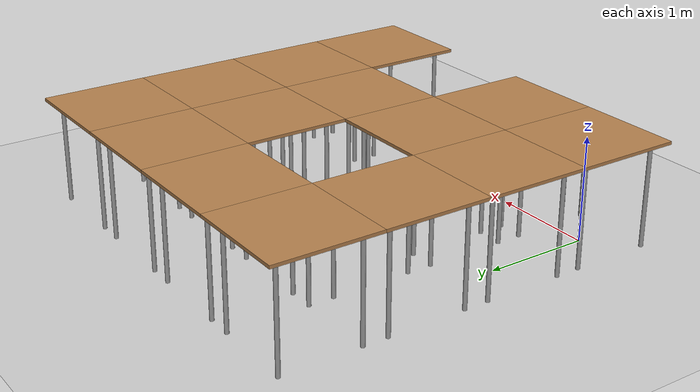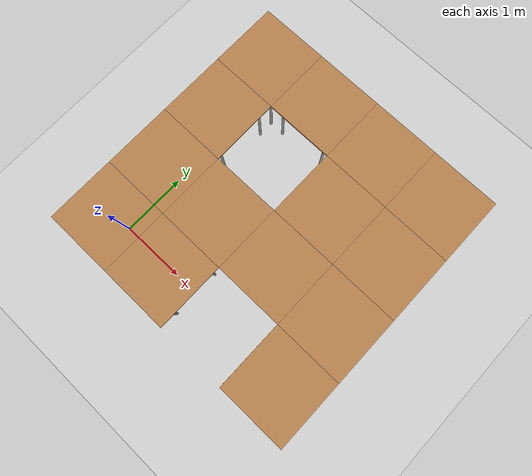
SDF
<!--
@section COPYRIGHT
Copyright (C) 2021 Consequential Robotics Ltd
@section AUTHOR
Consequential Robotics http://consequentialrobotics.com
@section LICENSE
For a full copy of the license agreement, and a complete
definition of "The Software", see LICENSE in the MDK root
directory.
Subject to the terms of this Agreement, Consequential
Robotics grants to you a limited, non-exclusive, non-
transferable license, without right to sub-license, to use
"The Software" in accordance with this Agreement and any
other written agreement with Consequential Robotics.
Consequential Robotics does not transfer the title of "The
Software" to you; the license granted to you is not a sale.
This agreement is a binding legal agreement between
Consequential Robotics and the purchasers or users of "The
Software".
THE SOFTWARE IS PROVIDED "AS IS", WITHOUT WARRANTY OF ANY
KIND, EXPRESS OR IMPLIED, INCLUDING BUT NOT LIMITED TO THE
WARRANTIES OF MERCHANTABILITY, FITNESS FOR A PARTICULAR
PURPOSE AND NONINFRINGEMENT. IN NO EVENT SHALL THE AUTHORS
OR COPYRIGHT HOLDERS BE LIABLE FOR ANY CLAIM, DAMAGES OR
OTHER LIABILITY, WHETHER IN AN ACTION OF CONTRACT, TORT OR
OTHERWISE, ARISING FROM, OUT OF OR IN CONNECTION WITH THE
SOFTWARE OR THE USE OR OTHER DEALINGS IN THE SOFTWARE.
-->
<sdf version="1.5">
 <world name="default">
  <physics name="default_physics" default="0" type="ode">
   <max_step_size>0.001</max_step_size>
   <real_time_factor>1</real_time_factor>
   <real_time_update_rate>1000</real_time_update_rate>
  </physics>
  <scene><ambient>0.4 0.4 0.4 1</ambient><background>0.7 0.7 0.7 1</background><shadows>0</shadows></scene>
  <light name="sun" type="directional">
   <cast_shadows>0</cast_shadows>
   <pose>0 0 10 0 -0 0</pose>
   <diffuse>0.8 0.8 0.8 1</diffuse>
   <specular>0.1 0.1 0.1 1</specular>
   <attenuation>
    <range>1000</range>
    <constant>0.9</constant>
    <linear>0.01</linear>
    <quadratic>0.001</quadratic>
   </attenuation>
   <direction>-0.5 0.5 -1</direction>
  </light>
  <include><uri>model://ground_plane</uri></include>
  <include><name>tile-1</name><uri>model://wumpus_tile</uri></include>
  <include><name>tile-2</name><uri>model://wumpus_tile</uri><pose>1 0 0 0 0 0</pose></include>
  <include><name>tile-4</name><uri>model://wumpus_tile</uri><pose>3 0 0 0 0 0</pose></include>
  <include><name>tile-5</name><uri>model://wumpus_tile</uri><pose>0 1 0 0 0 0</pose></include>
  <include><name>tile-6</name><uri>model://wumpus_tile</uri><pose>1 1 0 0 0 0</pose></include>
  <include><name>tile-7</name><uri>model://wumpus_tile</uri><pose>2 1 0 0 0 0</pose></include>
  <include><name>tile-8</name><uri>model://wumpus_tile</uri><pose>3 1 0 0 0 0</pose></include>
  <include><name>tile-9</name><uri>model://wumpus_tile</uri><pose>0 2 0 0 0 0</pose></include>
  <include><name>tile-11</name><uri>model://wumpus_tile</uri><pose>2 2 0 0 0 0</pose></include>
  <include><name>tile-12</name><uri>model://wumpus_tile</uri><pose>3 2 0 0 0 0</pose></include>
  <include><name>tile-13</name><uri>model://wumpus_tile</uri><pose>0 3 0 0 0 0</pose></include>
  <include><name>tile-14</name><uri>model://wumpus_tile</uri><pose>1 3 0 0 0 0</pose></include>
  <include><name>tile-15</name><uri>model://wumpus_tile</uri><pose>2 3 0 0 0 0</pose></include>
  <include><name>tile-16</name><uri>model://wumpus_tile</uri><pose>3 3 0 0 0 0</pose></include>
  <light name="spot-light-0" type="spot">
   <pose>2.30789 0.093 1.55469 0 0.641896 0</pose>
   <diffuse>0.5 0.5 0.5 1</diffuse>
   <specular>0.1 0.1 0.1 1</specular>
   <direction>0 0 -1</direction>
   <attenuation>
    <range>20</range>
    <constant>0.5</constant>
    <linear>0.01</linear>
    <quadratic>0.001</quadratic>
   </attenuation>
   <spot><inner_angle>0.6</inner_angle><outer_angle>0.8</outer_angle><falloff>1.0</falloff></spot>
   <cast_shadows>0</cast_shadows>
  </light>
  <gravity>0 0 -9.8</gravity>
  <magnetic_field>6e-06 2.3e-05 -4.2e-05</magnetic_field>
  <atmosphere type="adiabatic"/>
  <spherical_coordinates>
   <surface_model>EARTH_WGS84</surface_model>
   <latitude_deg>0</latitude_deg>
   <longitude_deg>0</longitude_deg>
   <elevation>0</elevation>
   <heading_deg>0</heading_deg>
  </spherical_coordinates>
 </world>
</sdf>

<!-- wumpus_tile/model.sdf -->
<sdf version="1.5">
  <model name="wumpus_tile">
    <static>true</static>
    <link name="link">
      <collision name="surface">
        <pose>0 0 1.0 0 0 0</pose>
        <geometry>
          <box>
            <size>1.0 1.0 0.03</size>
          </box>
        </geometry>
        <surface>
          <friction>
            <ode>
              <mu>0.6</mu>
              <mu2>0.6</mu2>
            </ode>
          </friction>
        </surface>
      </collision>
      <visual name="visual1">
        <pose>0 0 1.0 0 0 0</pose>
        <geometry>
          <box>
            <size>1.0 1.0 0.03</size>
          </box>
        </geometry>
        <material>
          <script>
            <uri>file://media/materials/scripts/gazebo.material</uri>
            <name>Gazebo/Wood</name>
          </script>
        </material>
      </visual>
      <collision name="front_left_leg">
        <pose>0.38 0.38 0.5 0 0 0</pose>
        <geometry>
          <cylinder>
            <radius>0.02</radius>
            <length>1.0</length>
          </cylinder>
        </geometry>
      </collision>
      <visual name="front_left_leg">
        <pose>0.38 0.38 0.5 0 0 0</pose>
        <geometry>
          <cylinder>
            <radius>0.02</radius>
            <length>1.0</length>
          </cylinder>
        </geometry>
        <material>
          <script>
            <uri>file://media/materials/scripts/gazebo.material</uri>
            <name>Gazebo/Grey</name>
          </script>
        </material>
      </visual>
      <collision name="front_right_leg">
        <pose>0.38 -0.38 0.5 0 0 0</pose>
        <geometry>
          <cylinder>
            <radius>0.02</radius>
            <length>1.0</length>
          </cylinder>
        </geometry>
      </collision>
      <visual name="front_right_leg">
        <pose>0.38 -0.38 0.5 0 0 0</pose>
        <geometry>
          <cylinder>
            <radius>0.02</radius>
            <length>1.0</length>
          </cylinder>
        </geometry>
        <material>
          <script>
            <uri>file://media/materials/scripts/gazebo.material</uri>
            <name>Gazebo/Grey</name>
          </script>
        </material>
      </visual>
      <collision name="back_right_leg">
        <pose>-0.38 -0.38 0.5 0 0 0</pose>
        <geometry>
          <cylinder>
            <radius>0.02</radius>
            <length>1.0</length>
          </cylinder>
        </geometry>
      </collision>
      <visual name="back_right_leg">
        <pose>-0.38 -0.38 0.5 0 0 0</pose>
        <geometry>
          <cylinder>
            <radius>0.02</radius>
            <length>1.0</length>
          </cylinder>
        </geometry>
        <material>
          <script>
            <uri>file://media/materials/scripts/gazebo.material</uri>
            <name>Gazebo/Grey</name>
          </script>
        </material>
      </visual>
      <collision name="back_left_leg">
        <pose>-0.38 0.38 0.5 0 0 0</pose>
        <geometry>
          <cylinder>
            <radius>0.02</radius>
            <length>1.0</length>
          </cylinder>
        </geometry>
      </collision>
      <visual name="back_left_leg">
        <pose>-0.38 0.38 0.5 0 0 0</pose>
        <geometry>
          <cylinder>
            <radius>0.02</radius>
            <length>1.0</length>
          </cylinder>
        </geometry>
        <material>
          <script>
            <uri>file://media/materials/scripts/gazebo.material</uri>
            <name>Gazebo/Grey</name>
          </script>
        </material>
      </visual>
    </link>
  </model>
</sdf>
